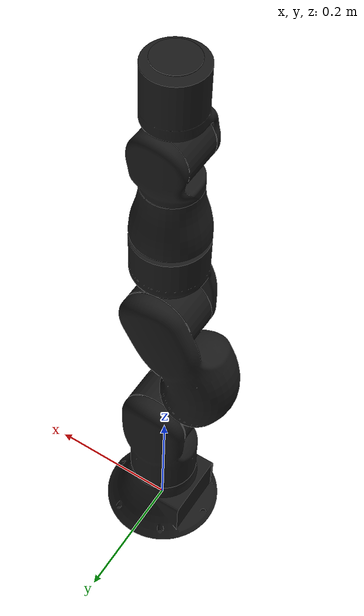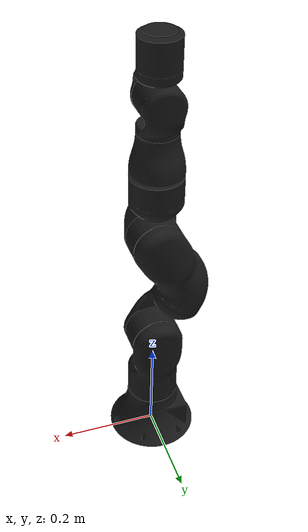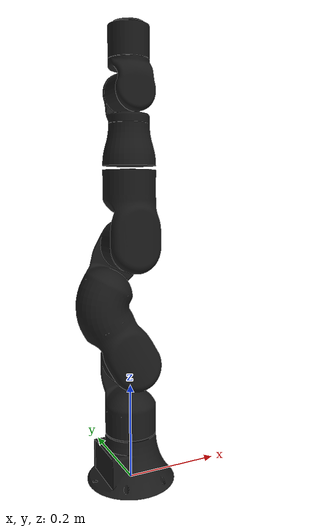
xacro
<?xml version="1.0"?>
<robot xmlns:xacro="http://www.ros.org/wiki/xacro" name="igus_rebel">

	<!-- Gazebo version -->
	<xacro:arg name="load_gazebo" default="true" />

	<!-- Controller settings, only enable a single one in the launch file -->
	<xacro:arg name="hardware_protocol" default="simulation" />

	<!-- Argument that tells if Moveit2 is used or not -->
	<xacro:arg name="moveit" default="false" />

	<!-- Set both at 0.0 if collapsing is not interested in gazebo -->
	<xacro:property name="damping" value="0.0" />
	<xacro:property name="friction" value="0.0" />

    <xacro:if value="$(arg load_gazebo)">
        <link name="world" />
        <joint name="world_joint" type="fixed">
            <parent link="world" />
            <child link="base_link" />
        </joint>
    </xacro:if>

	<link name="base_link" />
	<joint name="base_link_to_igus_rebel" type="fixed">
		<parent link="base_link" />
		<child link="igus_rebel_base_link" />
		<origin xyz="0.0 0.0 0.0" rpy="0.0 0.0 0.0" />
	</joint>

	<!-- load igus rebel with camera gripper and castle -->
	<xacro:include
		filename="$(find igus_rebel_description_ros2)/urdf/igus_rebel/igus_rebel.urdf.xacro" />
	<xacro:igus_rebel
		hardware_protocol="$(arg hardware_protocol)"
		load_gazebo="$(arg load_gazebo)" moveit="$(arg moveit)" />

</robot>

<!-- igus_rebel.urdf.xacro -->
<robot xmlns:xacro="http://www.ros.org/wiki/xacro" name="igus_rebel">

	<!-- macro definition for the robot -->
	<xacro:macro name="igus_rebel" params="hardware_protocol load_gazebo moveit">
<!--		params="load_base mount camera end_effector hardware_protocol load_gazebo moveit">-->

		<!-- Gazebo macro -->
		<xacro:if value="${load_gazebo}">

			<xacro:include
					filename="$(find igus_rebel_description_ros2)/urdf/igus_rebel/igus_rebel.gazebo.xacro" />

			<!-- The plugin that control the robot in Ignition is loaded if Moveit2 will be used.
			The Moveit2 controller configuration file is directly passed as a parameter to this plugin -->
			<xacro:if value="${moveit}">
				<xacro:ign_ros2_control
						controller_parameters="$(find igus_rebel_moveit_config)/config/gazebo_controllers.yaml" />
			</xacro:if>

			<!-- The joint state publisher and the joint position controller are loaded if Moveit2
			is not used	because the robot is controllable directly from Ignition if some movement are needed -->
			<xacro:unless value="${moveit}">
				<xacro:ign_joint_state_publisher />
				<xacro:ign_joint_position_controller />
			</xacro:unless>

			<!--			&lt;!&ndash; The sensors used in Ignition are loaded only if a camera is attached &ndash;&gt;-->
			<!--				&lt;!&ndash; Since there is already a sensor plugin in the scout, if the scout is loaded-->
			<!--				the sensor plugin of the igus rebel is not loaded (temporary solution) &ndash;&gt;-->

		</xacro:if>

		<!-- Include and call rebel macro -->
		<xacro:include
			filename="$(find igus_rebel_description_ros2)/urdf/igus_rebel/igus_rebel.description.xacro" />
		<xacro:igus_rebel_description />

		<!-- controller macro -->
		<xacro:include
			filename="$(find igus_rebel_description_ros2)/urdf/igus_rebel/igus_rebel.control.xacro" />
		<xacro:igus_rebel_control hardware_protocol="${hardware_protocol}" />

<!--		&lt;!&ndash; Mount macros &ndash;&gt;-->

<!--		&lt;!&ndash; Camera macro &ndash;&gt;-->

	</xacro:macro>

</robot>

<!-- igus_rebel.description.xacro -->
<robot xmlns:xacro="http://www.ros.org/wiki/xacro" name="igus_rebel">

	<material name="dark_grey">
		<color rgba="${25/255.0} ${25/255.0} ${25/255.0} 1.000" />
	</material>

	<xacro:macro name="igus_rebel_description">
		<!-- Set both at 0.0 if collapsing is not interesting in gazebo -->
		<xacro:property name="damping" value="0.0" />
		<xacro:property name="friction" value="0.0" />

		<link name="igus_rebel_base_link">
			<visual>
				<geometry>
					<mesh
						filename="file://$(find igus_rebel_description_ros2)/meshes/igus_rebel/Joint0.dae" />
				</geometry>
				<material name="dark_grey" />
			</visual>
			<collision>
				<geometry>
					<mesh
						filename="file://$(find igus_rebel_description_ros2)/meshes/igus_rebel_mod/Joint0.stl"
						scale="0.0001 0.0001 0.0001" />
				</geometry>
			</collision>
			<inertial>
				<mass value="1.0" />
				<inertia ixx="1.0" ixy="0.0" ixz="0.0" iyy="1.0" iyz="0.0" izz="1.0" />
			</inertial>
		</link>

		<joint name="joint1" type="revolute">
			<parent link="igus_rebel_base_link" />
			<child link="link_1" />
			<origin rpy="0.0 0.0 0.0" xyz="0.0 0 0.103" />
			<axis xyz="0 0 1" />
			<limit effort="330.0" lower="${-pi*179/180}" upper="${pi*179/180}" velocity="${pi/4.0}" />
			<dynamics damping="${damping}" friction="${friction}" />
		</joint>
		<link name="link_1">
			<visual>
				<geometry>
					<mesh
						filename="file://$(find igus_rebel_description_ros2)/meshes/igus_rebel/Joint1.dae" />
				</geometry>
				<origin rpy="0 0 0" xyz="0 0 0" />
				<material name="dark_grey" />
			</visual>
			<collision>
				<geometry>
					<mesh
						filename="file://$(find igus_rebel_description_ros2)/meshes/igus_rebel_mod/Joint1.stl"
						scale="0.0001 0.0001 0.0001" />
				</geometry>
				<origin rpy="0 0 0" xyz="0 0 0" />
			</collision>
			<inertial>
				<mass value="0.1" />
				<inertia ixx="0.03" ixy="0.0" ixz="0.0" iyy="0.03" iyz="0.0" izz="0.03" />
			</inertial>
		</link>

		<joint name="joint2" type="revolute">
			<parent link="link_1" />
			<child link="link_2" />
			<origin rpy="0.0 0.0 0.0" xyz="0.0 0 0.149" />
			<axis xyz="0 1 0" />
			<limit effort="330.0" lower="${-pi*80/180}" upper="${pi*140/180}" velocity="${pi/4.0}" />
			<dynamics damping="${damping}" friction="${friction}" />
		</joint>

		<link name="link_2">
			<visual>
				<geometry>
					<mesh
						filename="file://$(find igus_rebel_description_ros2)/meshes/igus_rebel/Joint2.dae" />
				</geometry>
				<origin rpy="0 0 0" xyz="0 0 0" />
				<material name="dark_grey" />
			</visual>
			<collision>
				<geometry>
					<mesh
						filename="file://$(find igus_rebel_description_ros2)/meshes/igus_rebel_mod/Joint2.stl"
						scale="0.0001 0.0001 0.0001" />
				</geometry>
				<origin rpy="0 0 0" xyz="0 0 0" />
			</collision>
			<inertial>
				<mass value="0.1" />
				<inertia ixx="0.03" ixy="0.0" ixz="0.0" iyy="0.03" iyz="0.0" izz="0.03" />
			</inertial>
		</link>

		<joint name="joint3" type="revolute">
			<parent link="link_2" />
			<child link="link_5" />
			<origin rpy="0.0 0.0 0.0" xyz="0.0 0.0 0.2384" />
			<axis xyz="0 1 0" />
			<limit effort="330.0" lower="${-pi*80/180}" upper="${pi*140/180}" velocity="${pi/4.0}" />
			<dynamics damping="${damping}" friction="${friction}" />
		</joint>

		<link name="link_5">
			<visual>
				<geometry>
					<mesh
						filename="file://$(find igus_rebel_description_ros2)/meshes/igus_rebel/Joint3.dae" />
				</geometry>
				<origin rpy="0 0 0" xyz="0 0 0" />
				<material name="dark_grey" />
			</visual>
			<collision>
				<geometry>
					<mesh
						filename="file://$(find igus_rebel_description_ros2)/meshes/igus_rebel_mod/Joint3.stl"
						scale="0.0001 0.0001 0.0001" />
				</geometry>
				<origin rpy="0 0 0" xyz="0 0 0" />
			</collision>
			<inertial>
				<mass value="0.1" />
				<inertia ixx="0.03" ixy="0.0" ixz="0.0" iyy="0.03" iyz="0.0" izz="0.03" />
			</inertial>
		</link>

		<joint name="joint4" type="revolute">
			<parent link="link_5" />
			<child link="link_6" />
			<origin rpy="0.0 0.0 0.0" xyz="0.0 0.0 0.127" />
			<axis xyz="0 0 1" />
			<limit effort="330.0" lower="${-pi*179/180}" upper="${pi*179/180}" velocity="${pi/4.0}" />
			<dynamics damping="${damping}" friction="${friction}" />
		</joint>

		<link name="link_6">
			<visual>
				<geometry>
					<mesh
						filename="file://$(find igus_rebel_description_ros2)/meshes/igus_rebel/Joint4.dae" />
				</geometry>
				<origin rpy="0 0 0" xyz="0 0 0" />
				<material name="dark_grey" />
			</visual>
			<collision>
				<geometry>
					<mesh
						filename="file://$(find igus_rebel_description_ros2)/meshes/igus_rebel_mod/Joint4.stl"
						scale="0.0001 0.0001 0.0001" />
				</geometry>
				<origin rpy="0 0 0" xyz="0 0 0" />
			</collision>
			<inertial>
				<mass value="0.1" />
				<inertia ixx="0.03" ixy="0.0" ixz="0.0" iyy="0.03" iyz="0.0" izz="0.03" />
			</inertial>
		</link>

		<joint name="joint5" type="revolute">
			<parent link="link_6" />
			<child link="link_7" />
			<origin rpy="0.0 0.0 0.0" xyz="0.0 0 ${0.14 + 0.03}" />
			<axis xyz="0 1 0" />
			<limit effort="330.0" lower="${-pi/2.0}" upper="${pi/2.0}" velocity="${pi/4.0}" />
			<dynamics damping="${damping}" friction="${friction}" />
		</joint>

		<link name="link_7">
			<visual>
				<geometry>
					<mesh
						filename="file://$(find igus_rebel_description_ros2)/meshes/igus_rebel/Joint5.dae" />
				</geometry>
				<origin rpy="0 0 0" xyz="0 0 0" />
				<material name="dark_grey" />
			</visual>
			<collision>
				<geometry>
					<mesh
						filename="file://$(find igus_rebel_description_ros2)/meshes/igus_rebel_mod/Joint5.stl"
						scale="0.0001 0.0001 0.0001" />
				</geometry>
				<origin rpy="0 0 0" xyz="0 0 0" />
			</collision>
			<inertial>
				<mass value="0.1" />
				<inertia ixx="0.03" ixy="0.0" ixz="0.0" iyy="0.03" iyz="0.0" izz="0.03" />
			</inertial>
		</link>

		<joint name="joint6" type="revolute">
			<parent link="link_7" />
			<child link="link_8" />
			<origin rpy="0.0 0.0 0.0" xyz="0.0 0 0.126" />
			<axis xyz="0 0 1" />
			<limit effort="330.0" lower="${-pi*179/180}" upper="${pi*179/180}" velocity="${pi/4.0}" />
			<dynamics damping="${damping}" friction="${friction}" />
		</joint>

		<link name="link_8">
			<visual>
				<geometry>
					<mesh
						filename="file://$(find igus_rebel_description_ros2)/meshes/igus_rebel/Joint6.dae" />
				</geometry>
				<origin rpy="0 0 0" xyz="0.0 0 0" />
				<material name="dark_grey" />
			</visual>
			<collision>
				<geometry>
					<mesh
						filename="file://$(find igus_rebel_description_ros2)/meshes/igus_rebel_mod/Joint6.stl"
						scale="0.0001 0.0001 0.0001" />
				</geometry>
				<origin rpy="0 0 0" xyz="0.0 0 0" />
			</collision>
			<inertial>
				<mass value="0.1" />
				<inertia ixx="0.03" ixy="0.0" ixz="0.0" iyy="0.03" iyz="0.0" izz="0.03" />
			</inertial>
		</link>

		<joint name="joint7" type="fixed">
			<parent link="link_8" />
			<child link="flange" />
			<origin rpy="0.0 ${-pi/2} 0.0" xyz="0.0 0.0 0.0" />
			<axis xyz="0 0 0" />
			<dynamics damping="${damping}" friction="${friction}" />
		</joint>

		<link name="flange" />

	</xacro:macro>
</robot>
